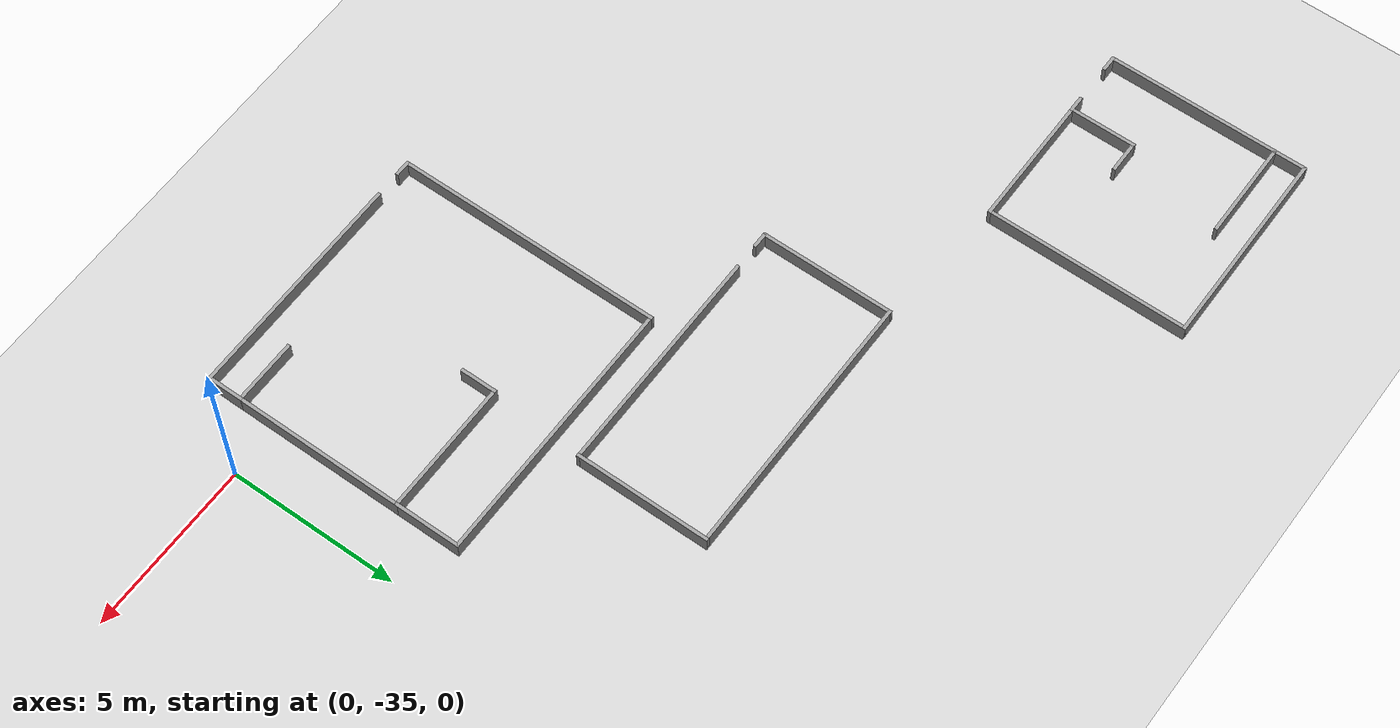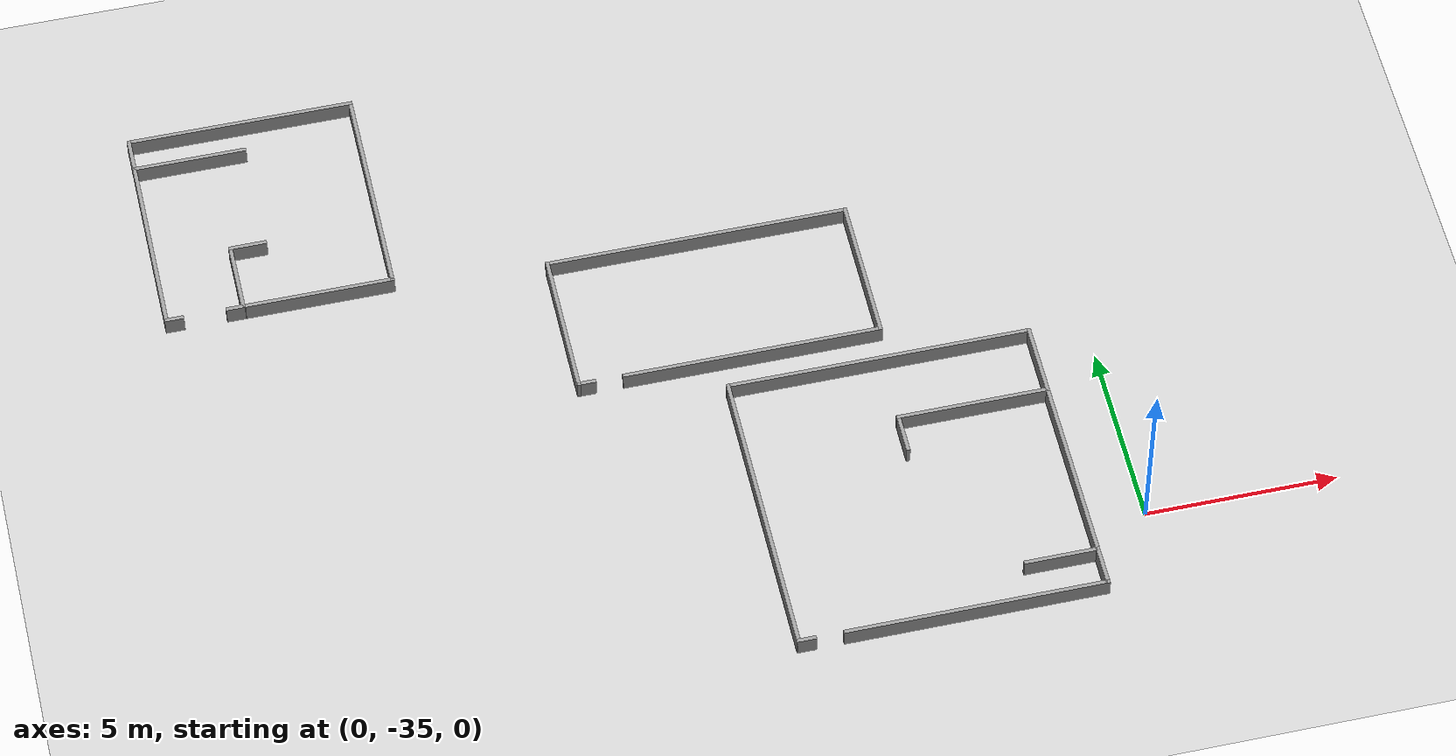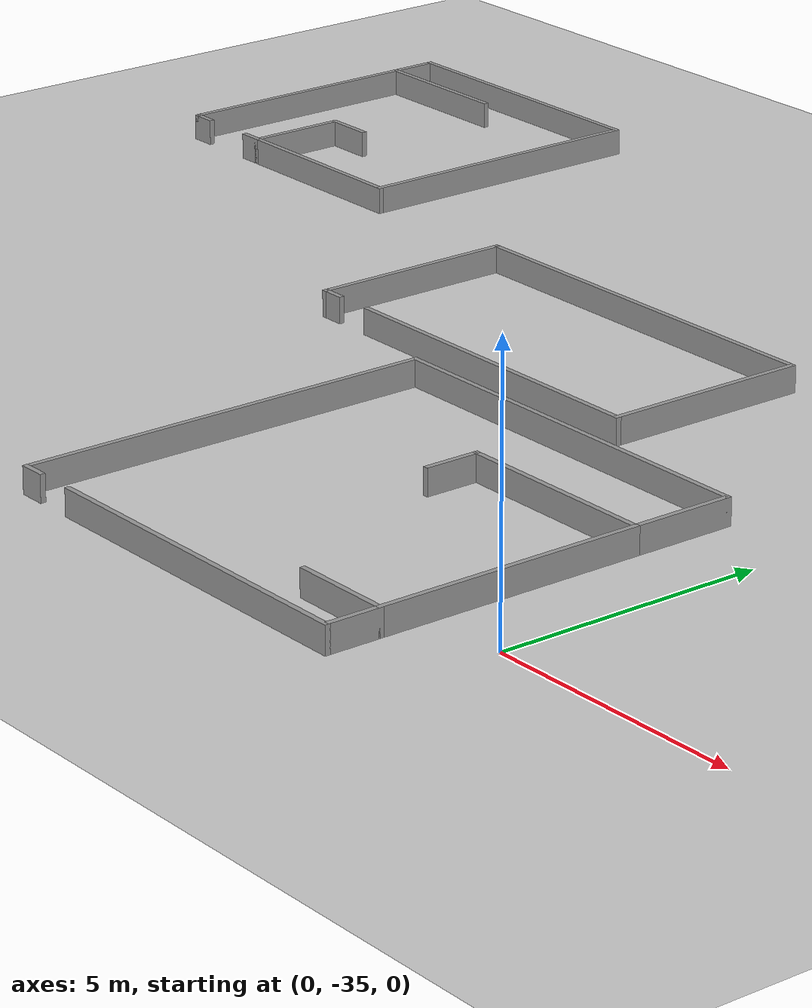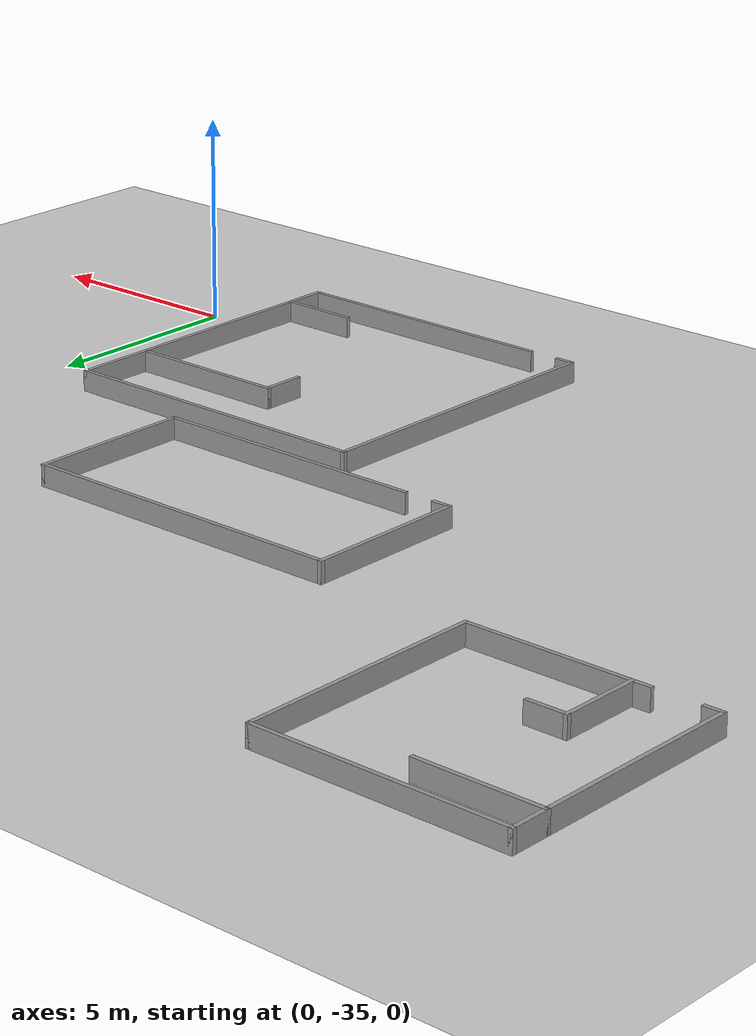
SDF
<sdf version="1.6">
 <world name="default">
  <model name="ground_plane">
   <static>1</static>
   <link name="link">
    <collision name="collision">
     <geometry><plane><normal>0 0 1</normal><size>80 80</size></plane></geometry>
     <surface>
      <contact><collide_bitmask>65535</collide_bitmask></contact>
      <friction><ode><mu>100</mu><mu2>50</mu2></ode></friction>
     </surface>
     <max_contacts>15</max_contacts>
    </collision>
    <visual name="visual">
     <cast_shadows>0</cast_shadows>
     <geometry><plane><normal>0 0 1</normal><size>80 80</size></plane></geometry>
     <material>
      <script><uri>file://media/materials/scripts/gazebo.material</uri><name>Gazebo/Grey</name></script>
     </material>
    </visual>
   </link>
  </model>
  <model name="shape3">
   <pose>-9.2 -26.3 0 0 -0 0</pose>
   <link name="Wall_11">
    <collision name="Wall_11_Collision">
     <geometry><box><size>4 0.1 0.5</size></box></geometry>
     <pose>0 0 0.25 0 -0 0</pose>
    </collision>
    <visual name="Wall_11_Visual">
     <pose>0 0 0.25 0 -0 0</pose>
     <geometry><box><size>4 0.1 0.5</size></box></geometry>
     <material>
      <script><uri>file://media/materials/scripts/gazebo.material</uri><name>Gazebo/Grey</name></script>
      <ambient>1 1 1 1</ambient>
     </material>
     <meta><layer>0</layer></meta>
    </visual>
    <pose>-3.95 0 0 0 -0 -1.5708</pose>
   </link>
   <link name="Wall_12">
    <collision name="Wall_12_Collision">
     <geometry><box><size>0.5 0.1 0.5</size></box></geometry>
     <pose>0 0 0.25 0 -0 0</pose>
    </collision>
    <visual name="Wall_12_Visual">
     <pose>0 0 0.25 0 -0 0</pose>
     <geometry><box><size>0.5 0.1 0.5</size></box></geometry>
     <material>
      <script><uri>file://media/materials/scripts/gazebo.material</uri><name>Gazebo/Grey</name></script>
      <ambient>1 1 1 1</ambient>
     </material>
     <meta><layer>0</layer></meta>
    </visual>
    <pose>-3.75 -1.95 0 0 -0 0</pose>
   </link>
   <link name="Wall_7">
    <collision name="Wall_7_Collision">
     <geometry><box><size>8 0.1 0.5</size></box></geometry>
     <pose>0 0 0.25 0 -0 0</pose>
    </collision>
    <visual name="Wall_7_Visual">
     <pose>0 0 0.25 0 -0 0</pose>
     <geometry><box><size>8 0.1 0.5</size></box></geometry>
     <material>
      <script><uri>file://media/materials/scripts/gazebo.material</uri><name>Gazebo/Grey</name></script>
      <ambient>1 1 1 1</ambient>
     </material>
     <meta><layer>0</layer></meta>
    </visual>
    <pose>-0 1.95 0 0 -0 0</pose>
   </link>
   <link name="Wall_8">
    <collision name="Wall_8_Collision">
     <geometry><box><size>4 0.1 0.5</size></box></geometry>
     <pose>0 0 0.25 0 -0 0</pose>
    </collision>
    <visual name="Wall_8_Visual">
     <pose>0 0 0.25 0 -0 0</pose>
     <geometry><box><size>4 0.1 0.5</size></box></geometry>
     <material>
      <script><uri>file://media/materials/scripts/gazebo.material</uri><name>Gazebo/Grey</name></script>
      <ambient>1 1 1 1</ambient>
     </material>
     <meta><layer>0</layer></meta>
    </visual>
    <pose>3.95 0 0 0 -0 -1.5708</pose>
   </link>
   <link name="Wall_9">
    <collision name="Wall_9_Collision">
     <geometry><box><size>6.8 0.1 0.5</size></box></geometry>
     <pose>0 0 0.25 0 -0 0</pose>
    </collision>
    <visual name="Wall_9_Visual">
     <pose>0 0 0.25 0 -0 0</pose>
     <geometry><box><size>6.8 0.1 0.5</size></box></geometry>
     <material>
      <script><uri>file://media/materials/scripts/gazebo.material</uri><name>Gazebo/Grey</name></script>
      <ambient>1 1 1 1</ambient>
     </material>
     <meta><layer>0</layer></meta>
    </visual>
    <pose>0.6 -1.95 0 0 -0 3.14159</pose>
   </link>
   <static>1</static>
  </model>
  <model name="shape6">
   <pose>-5.5 -33.1 0 0 -0 0</pose>
   <link name="Wall_0">
    <collision name="Wall_0_Collision">
     <geometry><box><size>8 0.1 0.5</size></box></geometry>
     <pose>0 0 0.25 0 -0 0</pose>
    </collision>
    <visual name="Wall_0_Visual">
     <pose>0 0 0.25 0 -0 0</pose>
     <geometry><box><size>8 0.1 0.5</size></box></geometry>
     <material>
      <script><uri>file://media/materials/scripts/gazebo.material</uri><name>Gazebo/Grey</name></script>
      <ambient>1 1 1 1</ambient>
     </material>
     <meta><layer>0</layer></meta>
    </visual>
    <pose>-3.95 0 0 0 -0 -1.5708</pose>
   </link>
   <link name="Wall_1">
    <collision name="Wall_1_Collision">
     <geometry><box><size>0.5 0.1 0.5</size></box></geometry>
     <pose>0 0 0.25 0 -0 0</pose>
    </collision>
    <visual name="Wall_1_Visual">
     <pose>0 0 0.25 0 -0 0</pose>
     <geometry><box><size>0.5 0.1 0.5</size></box></geometry>
     <material>
      <script><uri>file://media/materials/scripts/gazebo.material</uri><name>Gazebo/Grey</name></script>
      <ambient>1 1 1 1</ambient>
     </material>
     <meta><layer>0</layer></meta>
    </visual>
    <pose>-3.75 -3.95 0 0 -0 0</pose>
   </link>
   <link name="Wall_10">
    <collision name="Wall_10_Collision">
     <geometry><box><size>1.95 0.1 0.5</size></box></geometry>
     <pose>0 0 0.25 0 -0 0</pose>
    </collision>
    <visual name="Wall_10_Visual">
     <pose>0 0 0.25 0 -0 0</pose>
     <geometry><box><size>1.95 0.1 0.5</size></box></geometry>
     <material>
      <script><uri>file://media/materials/scripts/gazebo.material</uri><name>Gazebo/Grey</name></script>
      <ambient>1 1 1 1</ambient>
     </material>
     <meta><layer>0</layer></meta>
    </visual>
    <pose>3.025 -2.95 0 0 -0 3.14159</pose>
   </link>
   <link name="Wall_12">
    <collision name="Wall_12_Collision">
     <geometry><box><size>1.1 0.1 0.5</size></box></geometry>
     <pose>0 0 0.25 0 -0 0</pose>
    </collision>
    <visual name="Wall_12_Visual">
     <pose>0 0 0.25 0 -0 0</pose>
     <geometry><box><size>1.1 0.1 0.5</size></box></geometry>
     <material>
      <script><uri>file://media/materials/scripts/gazebo.material</uri><name>Gazebo/Grey</name></script>
      <ambient>1 1 1 1</ambient>
     </material>
     <meta><layer>0</layer></meta>
    </visual>
    <pose>3.95 -3.45 0 0 -0 -1.5708</pose>
   </link>
   <link name="Wall_13">
    <collision name="Wall_13_Collision">
     <geometry><box><size>6.8 0.1 0.5</size></box></geometry>
     <pose>0 0 0.25 0 -0 0</pose>
    </collision>
    <visual name="Wall_13_Visual">
     <pose>0 0 0.25 0 -0 0</pose>
     <geometry><box><size>6.8 0.1 0.5</size></box></geometry>
     <material>
      <script><uri>file://media/materials/scripts/gazebo.material</uri><name>Gazebo/Grey</name></script>
      <ambient>1 1 1 1</ambient>
     </material>
     <meta><layer>0</layer></meta>
    </visual>
    <pose>0.6 -3.95 0 0 -0 3.14159</pose>
   </link>
   <link name="Wall_3">
    <collision name="Wall_3_Collision">
     <geometry><box><size>8 0.1 0.5</size></box></geometry>
     <pose>0 0 0.25 0 -0 0</pose>
    </collision>
    <visual name="Wall_3_Visual">
     <pose>0 0 0.25 0 -0 0</pose>
     <geometry><box><size>8 0.1 0.5</size></box></geometry>
     <material>
      <script><uri>file://media/materials/scripts/gazebo.material</uri><name>Gazebo/Grey</name></script>
      <ambient>1 1 1 1</ambient>
     </material>
     <meta><layer>0</layer></meta>
    </visual>
    <pose>-0 3.95 0 0 -0 0</pose>
   </link>
   <link name="Wall_4">
    <collision name="Wall_4_Collision">
     <geometry><box><size>2 0.1 0.5</size></box></geometry>
     <pose>0 0 0.25 0 -0 0</pose>
    </collision>
    <visual name="Wall_4_Visual">
     <pose>0 0 0.25 0 -0 0</pose>
     <geometry><box><size>2 0.1 0.5</size></box></geometry>
     <material>
      <script><uri>file://media/materials/scripts/gazebo.material</uri><name>Gazebo/Grey</name></script>
      <ambient>1 1 1 1</ambient>
     </material>
     <meta><layer>0</layer></meta>
    </visual>
    <pose>3.95 3 0 0 -0 -1.5708</pose>
   </link>
   <link name="Wall_5">
    <collision name="Wall_5_Collision">
     <geometry><box><size>5.1 0.1 0.5</size></box></geometry>
     <pose>0 0 0.25 0 -0 0</pose>
    </collision>
    <visual name="Wall_5_Visual">
     <pose>0 0 0.25 0 -0 0</pose>
     <geometry><box><size>5.1 0.1 0.5</size></box></geometry>
     <material>
      <script><uri>file://media/materials/scripts/gazebo.material</uri><name>Gazebo/Grey</name></script>
      <ambient>1 1 1 1</ambient>
     </material>
     <meta><layer>0</layer></meta>
    </visual>
    <pose>3.95 -0.45 0 0 -0 -1.5708</pose>
   </link>
   <link name="Wall_7">
    <collision name="Wall_7_Collision">
     <geometry><box><size>4 0.1 0.5</size></box></geometry>
     <pose>0 0 0.25 0 -0 0</pose>
    </collision>
    <visual name="Wall_7_Visual">
     <pose>0 0 0.25 0 -0 0</pose>
     <geometry><box><size>4 0.1 0.5</size></box></geometry>
     <material>
      <script><uri>file://media/materials/scripts/gazebo.material</uri><name>Gazebo/Grey</name></script>
      <ambient>1 1 1 1</ambient>
     </material>
     <meta><layer>0</layer></meta>
    </visual>
    <pose>2 2.05 0 0 -0 3.14159</pose>
   </link>
   <link name="Wall_8">
    <collision name="Wall_8_Collision">
     <geometry><box><size>1.1 0.1 0.5</size></box></geometry>
     <pose>0 0 0.25 0 -0 0</pose>
    </collision>
    <visual name="Wall_8_Visual">
     <pose>0 0 0.25 0 -0 0</pose>
     <geometry><box><size>1.1 0.1 0.5</size></box></geometry>
     <material>
      <script><uri>file://media/materials/scripts/gazebo.material</uri><name>Gazebo/Grey</name></script>
      <ambient>1 1 1 1</ambient>
     </material>
     <meta><layer>0</layer></meta>
    </visual>
    <pose>0.05 1.55 0 0 -0 -1.5708</pose>
   </link>
   <static>1</static>
  </model>
  <model name="shape5">
   <pose>-20.1 -21 0 0 -0 0</pose>
   <link name="Wall_10">
    <collision name="Wall_10_Collision">
     <geometry><box><size>6 0.1 0.5</size></box></geometry>
     <pose>0 0 0.25 0 -0 0</pose>
    </collision>
    <visual name="Wall_10_Visual">
     <pose>0 0 0.25 0 -0 0</pose>
     <geometry><box><size>6 0.1 0.5</size></box></geometry>
     <material>
      <script><uri>file://media/materials/scripts/gazebo.material</uri><name>Gazebo/Grey</name></script>
      <ambient>1 1 1 1</ambient>
     </material>
     <meta><layer>0</layer></meta>
    </visual>
    <pose>-0 2.95 0 0 -0 0</pose>
   </link>
   <link name="Wall_11">
    <collision name="Wall_11_Collision">
     <geometry><box><size>6 0.1 0.5</size></box></geometry>
     <pose>0 0 0.25 0 -0 0</pose>
    </collision>
    <visual name="Wall_11_Visual">
     <pose>0 0 0.25 0 -0 0</pose>
     <geometry><box><size>6 0.1 0.5</size></box></geometry>
     <material>
      <script><uri>file://media/materials/scripts/gazebo.material</uri><name>Gazebo/Grey</name></script>
      <ambient>1 1 1 1</ambient>
     </material>
     <meta><layer>0</layer></meta>
    </visual>
    <pose>2.95 0 0 0 -0 -1.5708</pose>
   </link>
   <link name="Wall_12">
    <collision name="Wall_12_Collision">
     <geometry><box><size>4 0.1 0.5</size></box></geometry>
     <pose>0 0 0.25 0 -0 0</pose>
    </collision>
    <visual name="Wall_12_Visual">
     <pose>0 0 0.25 0 -0 0</pose>
     <geometry><box><size>4 0.1 0.5</size></box></geometry>
     <material>
      <script><uri>file://media/materials/scripts/gazebo.material</uri><name>Gazebo/Grey</name></script>
      <ambient>1 1 1 1</ambient>
     </material>
     <meta><layer>0</layer></meta>
    </visual>
    <pose>1 -2.95 0 0 -0 3.14159</pose>
   </link>
   <link name="Wall_13">
    <collision name="Wall_13_Collision">
     <geometry><box><size>2 0.1 0.5</size></box></geometry>
     <pose>0 0 0.25 0 -0 0</pose>
    </collision>
    <visual name="Wall_13_Visual">
     <pose>0 0 0.25 0 -0 0</pose>
     <geometry><box><size>2 0.1 0.5</size></box></geometry>
     <material>
      <script><uri>file://media/materials/scripts/gazebo.material</uri><name>Gazebo/Grey</name></script>
      <ambient>1 1 1 1</ambient>
     </material>
     <meta><layer>0</layer></meta>
    </visual>
    <pose>-0.95 -2 0 0 -0 1.5708</pose>
   </link>
   <link name="Wall_14">
    <collision name="Wall_14_Collision">
     <geometry><box><size>1.00029 0.1 0.5</size></box></geometry>
     <pose>0 0 0.25 0 -0 0</pose>
    </collision>
    <visual name="Wall_14_Visual">
     <pose>0 0 0.25 0 -0 0</pose>
     <geometry><box><size>1.00029 0.1 0.5</size></box></geometry>
     <material>
      <script><uri>file://media/materials/scripts/gazebo.material</uri><name>Gazebo/Grey</name></script>
      <ambient>1 1 1 1</ambient>
     </material>
     <meta><layer>0</layer></meta>
    </visual>
    <pose>-0.5 -1.05 0 0 -0 0</pose>
   </link>
   <link name="Wall_18">
    <collision name="Wall_18_Collision">
     <geometry><box><size>1 0.1 0.5</size></box></geometry>
     <pose>0 0 0.25 0 -0 0</pose>
    </collision>
    <visual name="Wall_18_Visual">
     <pose>0 0 0.25 0 -0 0</pose>
     <geometry><box><size>1 0.1 0.5</size></box></geometry>
     <material>
      <script><uri>file://media/materials/scripts/gazebo.material</uri><name>Gazebo/Grey</name></script>
      <ambient>1 1 1 1</ambient>
     </material>
     <meta><layer>0</layer></meta>
    </visual>
    <pose>-2.95 2.5 0 0 -0 -1.5708</pose>
   </link>
   <link name="Wall_19">
    <collision name="Wall_19_Collision">
     <geometry><box><size>3 0.1 0.5</size></box></geometry>
     <pose>0 0 0.25 0 -0 0</pose>
    </collision>
    <visual name="Wall_19_Visual">
     <pose>0 0 0.25 0 -0 0</pose>
     <geometry><box><size>3 0.1 0.5</size></box></geometry>
     <material>
      <script><uri>file://media/materials/scripts/gazebo.material</uri><name>Gazebo/Grey</name></script>
      <ambient>1 1 1 1</ambient>
     </material>
     <meta><layer>0</layer></meta>
    </visual>
    <pose>-1.5 2.05 0 0 -0 0</pose>
   </link>
   <link name="Wall_21">
    <collision name="Wall_21_Collision">
     <geometry><box><size>5.1 0.1 0.5</size></box></geometry>
     <pose>0 0 0.25 0 -0 0</pose>
    </collision>
    <visual name="Wall_21_Visual">
     <pose>0 0 0.25 0 -0 0</pose>
     <geometry><box><size>5.1 0.1 0.5</size></box></geometry>
     <material>
      <script><uri>file://media/materials/scripts/gazebo.material</uri><name>Gazebo/Grey</name></script>
      <ambient>1 1 1 1</ambient>
     </material>
     <meta><layer>0</layer></meta>
    </visual>
    <pose>-2.95 -0.45 0 0 -0 -1.5708</pose>
   </link>
   <link name="Wall_22">
    <collision name="Wall_22_Collision">
     <geometry><box><size>0.5 0.1 0.5</size></box></geometry>
     <pose>0 0 0.25 0 -0 0</pose>
    </collision>
    <visual name="Wall_22_Visual">
     <pose>0 0 0.25 0 -0 0</pose>
     <geometry><box><size>0.5 0.1 0.5</size></box></geometry>
     <material>
      <script><uri>file://media/materials/scripts/gazebo.material</uri><name>Gazebo/Grey</name></script>
      <ambient>1 1 1 1</ambient>
     </material>
     <meta><layer>0</layer></meta>
    </visual>
    <pose>-2.75 -2.95 0 0 -0 0</pose>
   </link>
   <link name="Wall_24">
    <collision name="Wall_24_Collision">
     <geometry><box><size>0.5 0.1 0.5</size></box></geometry>
     <pose>0 0 0.25 0 -0 0</pose>
    </collision>
    <visual name="Wall_24_Visual">
     <pose>0 0 0.25 0 -0 0</pose>
     <geometry><box><size>0.5 0.1 0.5</size></box></geometry>
     <material>
      <script><uri>file://media/materials/scripts/gazebo.material</uri><name>Gazebo/Grey</name></script>
      <ambient>1 1 1 1</ambient>
     </material>
     <meta><layer>0</layer></meta>
    </visual>
    <pose>-1.15 -2.95 0 0 -0 3.14159</pose>
   </link>
   <static>1</static>
  </model>
 </world>
</sdf>
